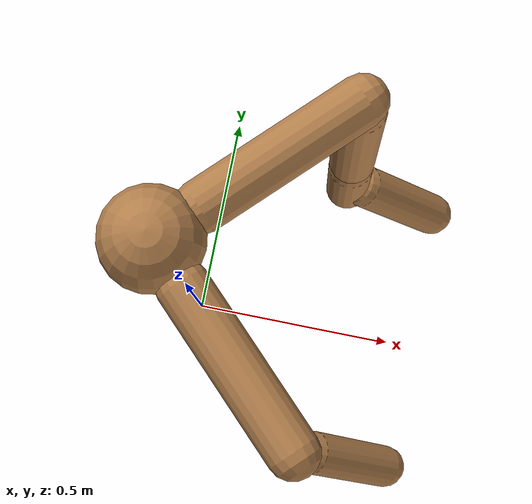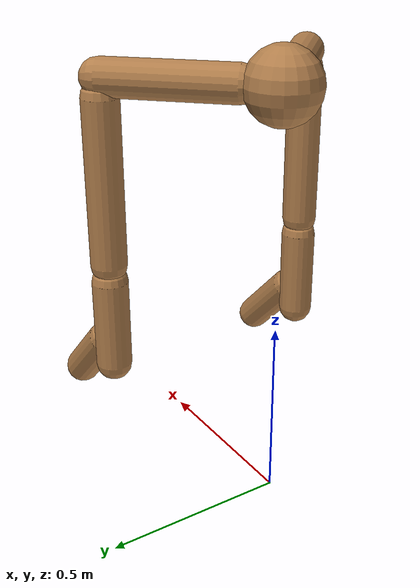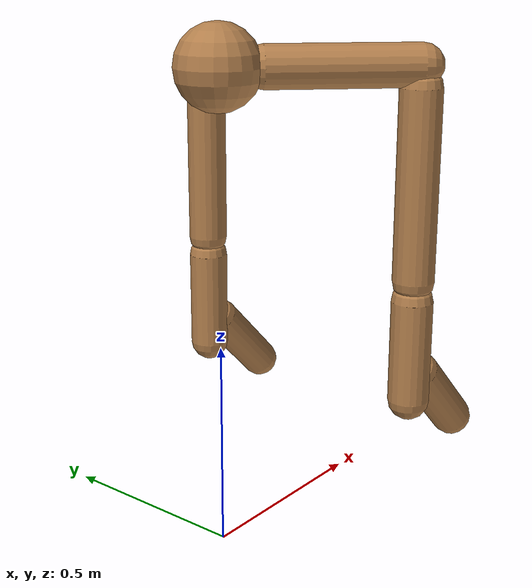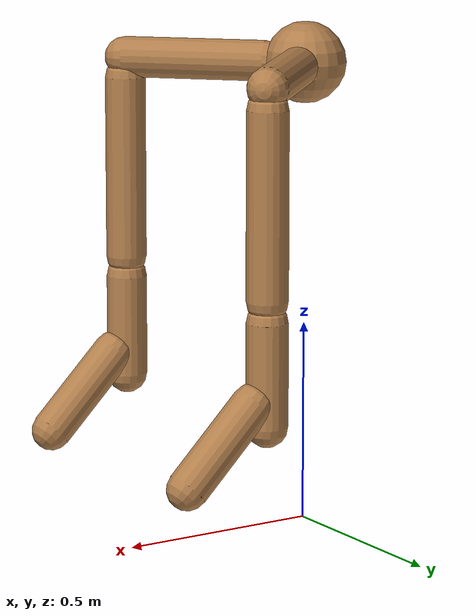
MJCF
<?xml version='1.0' encoding='UTF-8'?>
<!-- Universal Animal Template: unimal -->
<mujoco model="unimal">
  <compiler angle="degree"/>
  <size njmax="2000" nconmax="500"/>
  <option timestep=".005">
    <flag filterparent="disable"/>
  </option>
  <!-- Common defaults to make search space tractable -->
  <default>
    <!-- Define motor defaults -->
    <motor ctrlrange="-1 1" ctrllimited="true"/>
    <!-- Define joint defaults -->
    <default class="normal_joint">
      <joint type="hinge" damping="1" stiffness="1" armature="1" limited="true" range="-120 120" solimplimit="0 0.99 0.01"/>
    </default>
    <default class="walker_joint">
      <joint type="hinge" damping="0.2" stiffness="1" armature=".01" limited="true" range="-120 120" solimplimit="0 0.99 0.01"/>
    </default>
    <default class="stiff_joint">
      <joint type="hinge" damping="5" stiffness="10" armature=".01" limited="true" solimplimit="0 0.99 0.01"/>
    </default>
    <default class="free">
      <joint limited="false" damping="0" armature="0" stiffness="0"/>
    </default>
    <default class="growth_site">
      <site size="1e-6 1e-6 1e-6"/>
    </default>
    <default class="torso_growth_site">
      <site size="1e-6 1e-6 1e-6"/>
    </default>
    <default class="mirror_growth_site">
      <site size="1e-6 1e-6 1e-6"/>
    </default>
    <default class="btm_pos_site">
      <site size="1e-6 1e-6 1e-6"/>
    </default>
    <default class="box_face_site">
      <site size="1e-6 1e-6 1e-6"/>
    </default>
    <default class="imu_vel">
      <site type="box" size="0.05" rgba="1 0 0 0"/>
    </default>
    <default class="touch_site">
      <site group="3" rgba="0 0 1 .3"/>
    </default>
    <default class="food_site">
      <site material="food" size="0.15"/>
    </default>
    <!-- Define geom defaults -->
    <geom type="capsule" condim="3" friction="0.7 0.1 0.1" material="self"/>
  </default>
  <worldbody>
    <light diffuse="1 1 1" directional="true" exponent="1" pos="0 0 8" specular="0.1 0.1 0.1" dir="0 0 -1"/>
    <!-- Programatically generated xml goes here -->
    <body name="torso/0" pos="0 0 1.15">
      <joint name="root" type="free" class="free"/>
      <site name="root" class="imu_vel"/>
      <geom name="torso/0" type="sphere" size="0.1" condim="3" density="700"/>
      <camera name="side" pos="0 -7 2" xyaxes="1 0 0 0 1 2" mode="trackcom"/>
      <site name="torso/0" class="growth_site" pos="0 0 0"/>
      <site name="torso/btm_pos/0" class="btm_pos_site" pos="0 0 -0.1"/>
      <site name="torso/touch/0" class="touch_site" size="0.11"/>
      <site name="torso/horizontal_y/0" class="torso_growth_site" pos="-0.1 0 0"/>
      <body name="limb/12" pos="0.07 0.07 0.0">
        <joint name="limbx/12" type="hinge" class="normal_joint" range="0 90" pos="-0.04 -0.04 0.0" axis="0.5 -0.5 0.7071"/>
        <geom name="limb/12" type="capsule" fromto="0.0 0.0 0.0 0.25 0.25 0.0" size="0.05" density="900"/>
        <site name="limb/mid/12" class="mirror_growth_site" pos="0.14 0.14 0.0"/>
        <site name="limb/btm/12" class="mirror_growth_site" pos="0.25 0.25 0.0"/>
        <site name="limb/btm_pos/12" class="btm_pos_site" pos="0.25 0.25 0.0"/>
        <site name="limb/touch/12" class="touch_site" size="0.060000000000000005" fromto="0.0 0.0 0.0 0.25 0.25 0.0" type="capsule"/>
        <body name="limb/26" pos="0.25 0.25 -0.05">
          <joint name="limbx/26" type="hinge" class="normal_joint" range="0 45" pos="0.0 0.0 0.05" axis="1.0 0.0 0.0"/>
          <geom name="limb/26" type="capsule" fromto="0.0 0.0 0.0 0.0 0.0 -0.45" size="0.05" density="900"/>
          <site name="limb/mid/26" class="mirror_growth_site" pos="0.0 0.0 -0.25"/>
          <site name="limb/btm/26" class="mirror_growth_site" pos="0.0 0.0 -0.45"/>
          <site name="limb/btm_pos/26" class="btm_pos_site" pos="0.0 0.0 -0.45"/>
          <site name="limb/touch/26" class="touch_site" size="0.060000000000000005" fromto="0.0 0.0 0.0 0.0 0.0 -0.45" type="capsule"/>
          <body name="limb/28" pos="0.0 0.0 -0.5">
            <joint name="limbx/28" type="hinge" class="normal_joint" range="-30 60" pos="0.0 0.0 0.05" axis="1.0 0.0 0.0"/>
            <joint name="limby/28" type="hinge" class="normal_joint" range="-45 0" pos="0.0 0.0 0.05" axis="0.0 1.0 0.0"/>
            <geom name="limb/28" type="capsule" fromto="0.0 0.0 0.0 0.0 0.0 -0.25" size="0.05" density="900"/>
            <site name="limb/mid/28" class="mirror_growth_site" pos="0.0 0.0 -0.15"/>
            <site name="limb/btm/28" class="mirror_growth_site" pos="0.0 0.0 -0.25"/>
            <site name="limb/btm_pos/28" class="btm_pos_site" pos="0.0 0.0 -0.25"/>
            <site name="limb/touch/28" class="touch_site" size="0.060000000000000005" fromto="0.0 0.0 0.0 0.0 0.0 -0.25" type="capsule"/>
            <body name="limb/30" pos="0.04 0.0 -0.19">
              <joint name="limbx/30" type="hinge" class="normal_joint" range="-60 60" pos="-0.04 0.0 0.04" axis="0.7071 0.0 0.7071"/>
              <geom name="limb/30" type="capsule" fromto="0.0 0.0 0.0 0.18 0.0 -0.18" size="0.05" density="900"/>
              <site name="limb/mid/30" class="mirror_growth_site" pos="0.11 0.0 -0.11"/>
              <site name="limb/btm/30" class="mirror_growth_site" pos="0.18 0.0 -0.18"/>
              <site name="limb/btm_pos/30" class="btm_pos_site" pos="0.21 0.0 -0.21"/>
              <site name="limb/touch/30" class="touch_site" size="0.060000000000000005" fromto="0.0 0.0 0.0 0.18 0.0 -0.18" type="capsule"/>
            </body>
          </body>
        </body>
      </body>
      <body name="limb/13" pos="0.07 -0.07 0.0">
        <joint name="limbx/13" type="hinge" class="normal_joint" range="0 90" pos="-0.04 0.04 0.0" axis="0.5 0.5 0.7071"/>
        <geom name="limb/13" type="capsule" fromto="0.0 0.0 0.0 0.25 -0.25 0.0" size="0.05" density="900"/>
        <site name="limb/mid/13" class="mirror_growth_site" pos="0.14 -0.14 0.0"/>
        <site name="limb/btm/13" class="mirror_growth_site" pos="0.25 -0.25 0.0"/>
        <site name="limb/btm_pos/13" class="btm_pos_site" pos="0.25 -0.25 0.0"/>
        <site name="limb/touch/13" class="touch_site" size="0.060000000000000005" fromto="0.0 0.0 0.0 0.25 -0.25 0.0" type="capsule"/>
        <body name="limb/27" pos="0.25 -0.25 -0.05">
          <joint name="limbx/27" type="hinge" class="normal_joint" range="0 45" pos="0.0 0.0 0.05" axis="1.0 0.0 0.0"/>
          <geom name="limb/27" type="capsule" fromto="0.0 0.0 0.0 0.0 0.0 -0.45" size="0.05" density="900"/>
          <site name="limb/mid/27" class="mirror_growth_site" pos="0.0 0.0 -0.25"/>
          <site name="limb/btm/27" class="mirror_growth_site" pos="0.0 0.0 -0.45"/>
          <site name="limb/btm_pos/27" class="btm_pos_site" pos="0.0 0.0 -0.45"/>
          <site name="limb/touch/27" class="touch_site" size="0.060000000000000005" fromto="0.0 0.0 0.0 0.0 0.0 -0.45" type="capsule"/>
          <body name="limb/29" pos="0.0 0.0 -0.5">
            <joint name="limbx/29" type="hinge" class="normal_joint" range="-30 60" pos="0.0 0.0 0.05" axis="1.0 0.0 0.0"/>
            <joint name="limby/29" type="hinge" class="normal_joint" range="-45 0" pos="0.0 0.0 0.05" axis="0.0 1.0 0.0"/>
            <geom name="limb/29" type="capsule" fromto="0.0 0.0 0.0 0.0 0.0 -0.25" size="0.05" density="900"/>
            <site name="limb/mid/29" class="mirror_growth_site" pos="0.0 0.0 -0.15"/>
            <site name="limb/btm/29" class="mirror_growth_site" pos="0.0 0.0 -0.25"/>
            <site name="limb/btm_pos/29" class="btm_pos_site" pos="0.0 0.0 -0.25"/>
            <site name="limb/touch/29" class="touch_site" size="0.060000000000000005" fromto="0.0 0.0 0.0 0.0 0.0 -0.25" type="capsule"/>
            <body name="limb/31" pos="0.04 0.0 -0.19">
              <joint name="limbx/31" type="hinge" class="normal_joint" range="-60 60" pos="-0.04 0.0 0.04" axis="0.7071 0.0 0.7071"/>
              <geom name="limb/31" type="capsule" fromto="0.0 0.0 0.0 0.18 0.0 -0.18" size="0.05" density="900"/>
              <site name="limb/mid/31" class="mirror_growth_site" pos="0.11 0.0 -0.11"/>
              <site name="limb/btm/31" class="mirror_growth_site" pos="0.18 0.0 -0.18"/>
              <site name="limb/btm_pos/31" class="btm_pos_site" pos="0.21 0.0 -0.21"/>
              <site name="limb/touch/31" class="touch_site" size="0.060000000000000005" fromto="0.0 0.0 0.0 0.18 0.0 -0.18" type="capsule"/>
            </body>
          </body>
        </body>
      </body>
    </body>
  </worldbody>
  <actuator>
    <motor joint="limbx/12" gear="200" name="limbx/12"/>
    <motor joint="limbx/26" gear="250" name="limbx/26"/>
    <motor joint="limbx/28" gear="250" name="limbx/28"/>
    <motor joint="limby/28" gear="200" name="limby/28"/>
    <motor joint="limbx/30" gear="300" name="limbx/30"/>
    <motor joint="limbx/13" gear="200" name="limbx/13"/>
    <motor joint="limbx/27" gear="250" name="limbx/27"/>
    <motor joint="limbx/29" gear="250" name="limbx/29"/>
    <motor joint="limby/29" gear="200" name="limby/29"/>
    <motor joint="limbx/31" gear="300" name="limbx/31"/>
  </actuator>
  <sensor>
    <accelerometer name="torso_accel" site="root"/>
    <gyro name="torso_gyro" site="root"/>
    <velocimeter name="torso_vel" site="root"/>
    <subtreeangmom name="unimal_am" body="torso/0"/>
    <touch name="torso/0" site="torso/touch/0"/>
    <touch name="limb/12" site="limb/touch/12"/>
    <touch name="limb/26" site="limb/touch/26"/>
    <touch name="limb/28" site="limb/touch/28"/>
    <touch name="limb/30" site="limb/touch/30"/>
    <touch name="limb/13" site="limb/touch/13"/>
    <touch name="limb/27" site="limb/touch/27"/>
    <touch name="limb/29" site="limb/touch/29"/>
    <touch name="limb/31" site="limb/touch/31"/>
  </sensor>
  <!-- Add hfield assets -->
  <asset/>
  <!-- List of contacts to exclude -->
  <contact/>
  <!-- Define material, texture etc -->
  <asset>
    <material name="grid" texture="grid" texrepeat="1 1" texuniform="true" reflectance="0.1"/>
    <material name="hfield" texture="hfield" texrepeat="1 1" texuniform="true" reflectance="0.1"/>
    <material name="wall" texture="wall" texrepeat="1 1" texuniform="true" reflectance=".5"/>
    <material name="platform" texture="platform" texrepeat="1 1" texuniform="true" reflectance=".5"/>
    <material name="boundary" texture="boundary" texrepeat="1 1" texuniform="true" reflectance=".5"/>
    <material name="jump" texture="jump" texrepeat="1 1" texuniform="true" reflectance=".5"/>
    <material name="goal" rgba="1 0 0 1"/>
    <material name="food" rgba="0 0 1 1" emission="1"/>
    <material name="init_position" rgba="0 1 0 0.7"/>
    <material name="self" rgba=".7 .5 .3 1"/>
    <material name="self_invisible" rgba=".7 .5 .3 0"/>
    <material name="self_default" rgba=".7 .5 .3 1"/>
    <material name="self_highlight" rgba="0 .5 .3 1"/>
    <material name="effector" rgba=".7 .4 .2 1"/>
    <material name="effector_default" rgba=".7 .4 .2 1"/>
    <material name="effector_highlight" rgba="0 .5 .3 1"/>
    <material name="decoration" rgba=".3 .5 .7 1"/>
    <material name="eye" rgba="0 .2 1 1"/>
    <material name="target" rgba=".6 .3 .3 1"/>
    <material name="target_default" rgba=".6 .3 .3 1"/>
    <material name="target_highlight" rgba=".6 .3 .3 .4"/>
    <material name="site" rgba=".5 .5 .5 .3"/>
    <material name="ball" texture="ball"/>
  </asset>
  <asset>
    <texture name="grid" type="2d" builtin="checker" rgb1="0.4 0.4 0.4" rgb2="0.4 0.4 0.4" width="300" height="300" mark="edge" markrgb="0.2 0.2 0.2"/>
    <texture name="hfield" type="2d" builtin="checker" rgb1="0.4 0.4 0.4" rgb2="0.4 0.4 0.4" width="300" height="300" mark="edge" markrgb="0.2 0.2 0.2"/>
    <texture name="wall" type="2d" builtin="flat" rgb1="0.9 0.7 0" rgb2="0.9 0.7 0" width="300" height="300"/>
    <texture name="platform" type="2d" builtin="flat" rgb1="0.3 0 0.8" rgb2="0.3 0 0.8" width="300" height="300"/>
    <texture name="boundary" type="2d" builtin="flat" rgb1="0.3 0.3 0.3" rgb2="0.3 0.3 0.3" width="300" height="300"/>
    <texture name="jump" type="2d" builtin="flat" rgb1="0.3 0.3 0.3" rgb2="0.3 0.3 0.3" width="300" height="300"/>
    <texture name="skybox" type="skybox" builtin="gradient" rgb1="1 1 1" rgb2="0.6 0.6 0.6" width="800" height="800"/>
    <texture name="ball" builtin="checker" mark="cross" width="151" height="151" rgb1="0.1 0.1 0.1" rgb2="0.9 0.9 0.9" markrgb="1 1 1"/>
  </asset>
  <visual>
    <headlight ambient="0.6 0.6 0.6" diffuse="0.3 0.3 0.3" specular="0 0 0"/>
    <map znear=".01" shadowclip="0.5"/>
    <quality shadowsize="16384"/>
  </visual>
</mujoco>
